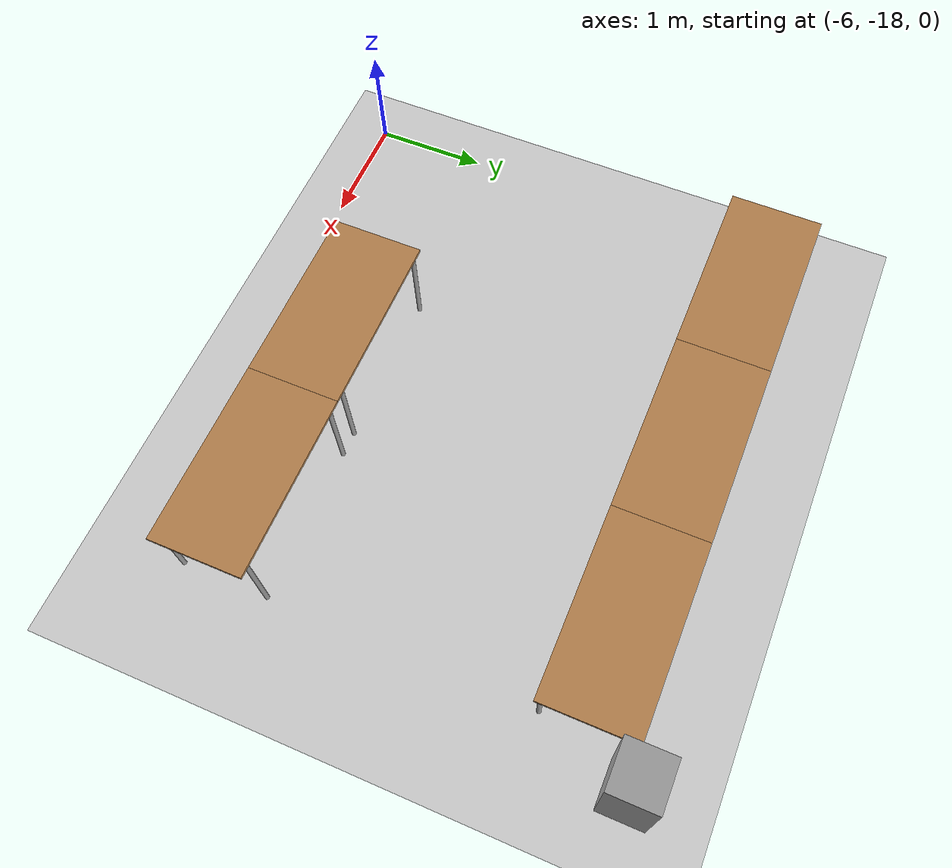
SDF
<sdf version="1.6">
 <world name="default">
  <model name="ground_plane">
   <static>1</static>
   <link name="link">
    <collision name="collision">
     <geometry><plane><normal>0 0 1</normal><size>100 100</size></plane></geometry>
     <surface><friction><ode><mu>100</mu><mu2>50</mu2></ode></friction></surface>
    </collision>
    <visual name="visual">
     <cast_shadows>0</cast_shadows>
     <geometry><plane><normal>0 0 1</normal><size>100 100</size></plane></geometry>
     <material>
      <script><uri>file://media/materials/scripts/gazebo.material</uri><name>Gazebo/Grey</name></script>
     </material>
    </visual>
   </link>
  </model>
  <model name="tablealt_0_clone_39">
   <link name="link">
    <inertial>
     <mass>1</mass>
     <inertia><ixx>1</ixx><ixy>0</ixy><ixz>0</ixz><iyy>1</iyy><iyz>0</iyz><izz>1</izz></inertia>
    </inertial>
    <visual name="back_right_leg">
     <pose>-0.68 -0.38 0.4 0 -0 0</pose>
     <geometry><cylinder><radius>0.02</radius><length>0.8</length></cylinder></geometry>
     <material>
      <script><uri>file://media/materials/scripts/gazebo.material</uri><name>Gazebo/Grey</name></script>
      <shader type="pixel"><normal_map>__default__</normal_map></shader>
      <ambient>0.3 0.3 0.3 1</ambient>
      <diffuse>0.7 0.7 0.7 1</diffuse>
      <specular>0.01 0.01 0.01 1</specular>
      <emissive>0 0 0 1</emissive>
     </material>
    </visual>
    <visual name="back_left_leg">
     <pose>-0.68 0.38 0.4 0 -0 0</pose>
     <geometry><cylinder><radius>0.02</radius><length>0.8</length></cylinder></geometry>
     <material>
      <script><uri>file://media/materials/scripts/gazebo.material</uri><name>Gazebo/Grey</name></script>
      <shader type="pixel"><normal_map>__default__</normal_map></shader>
      <ambient>0.3 0.3 0.3 1</ambient>
      <diffuse>0.7 0.7 0.7 1</diffuse>
      <specular>0.01 0.01 0.01 1</specular>
      <emissive>0 0 0 1</emissive>
     </material>
    </visual>
    <visual name="visual1">
     <pose>0 0 0.8 0 -0 0</pose>
     <geometry><box><size>1.57 0.8 0.03</size></box></geometry>
     <material>
      <script><uri>file://media/materials/scripts/gazebo.material</uri><name>Gazebo/Wood</name></script>
      <shader type="pixel"><normal_map>__default__</normal_map></shader>
      <ambient>0.92 0.92 0.68 1</ambient>
      <diffuse>1 1 1 1</diffuse>
      <specular>0.2 0.2 0.2 1</specular>
      <emissive>0 0 0 1</emissive>
     </material>
    </visual>
    <visual name="front_left_leg">
     <pose>0.68 0.38 0.4 0 -0 0</pose>
     <geometry><cylinder><radius>0.02</radius><length>0.8</length></cylinder></geometry>
     <material>
      <script><uri>file://media/materials/scripts/gazebo.material</uri><name>Gazebo/Grey</name></script>
      <shader type="pixel"><normal_map>__default__</normal_map></shader>
      <ambient>0.3 0.3 0.3 1</ambient>
      <diffuse>0.7 0.7 0.7 1</diffuse>
      <specular>0.01 0.01 0.01 1</specular>
      <emissive>0 0 0 1</emissive>
     </material>
    </visual>
    <visual name="front_right_leg">
     <pose>0.68 -0.38 0.4 0 -0 0</pose>
     <geometry><cylinder><radius>0.02</radius><length>0.8</length></cylinder></geometry>
     <material>
      <script><uri>file://media/materials/scripts/gazebo.material</uri><name>Gazebo/Grey</name></script>
      <shader type="pixel"><normal_map>__default__</normal_map></shader>
      <ambient>0.3 0.3 0.3 1</ambient>
      <diffuse>0.7 0.7 0.7 1</diffuse>
      <specular>0.01 0.01 0.01 1</specular>
      <emissive>0 0 0 1</emissive>
     </material>
    </visual>
    <collision name="front_right_leg">
     <pose>0.68 -0.38 0.4 0 -0 0</pose>
     <geometry><cylinder><radius>0.02</radius><length>0.8</length></cylinder></geometry>
     <surface>
      <friction>
       <ode><mu>1</mu><mu2>1</mu2><fdir1>0 0 0</fdir1><slip1>0</slip1><slip2>0</slip2></ode>
       <torsional>
        <coefficient>1</coefficient>
        <patch_radius>0</patch_radius>
        <surface_radius>0</surface_radius>
        <use_patch_radius>1</use_patch_radius>
        <ode><slip>0</slip></ode>
       </torsional>
      </friction>
      <bounce><restitution_coefficient>0</restitution_coefficient><threshold>1e+06</threshold></bounce>
      <contact>
       <collide_without_contact>0</collide_without_contact>
       <collide_without_contact_bitmask>1</collide_without_contact_bitmask>
       <collide_bitmask>1</collide_bitmask>
       <ode>
        <soft_cfm>0</soft_cfm>
        <soft_erp>0.2</soft_erp>
        <kp>1e+13</kp>
        <kd>1</kd>
        <max_vel>0.01</max_vel>
        <min_depth>0</min_depth>
       </ode>
       <bullet>
        <split_impulse>1</split_impulse>
        <split_impulse_penetration_threshold>-0.01</split_impulse_penetration_threshold>
        <soft_cfm>0</soft_cfm>
        <soft_erp>0.2</soft_erp>
        <kp>1e+13</kp>
        <kd>1</kd>
       </bullet>
      </contact>
     </surface>
    </collision>
    <collision name="surface">
     <pose>0 0 0.8 0 -0 0</pose>
     <geometry><box><size>1.5 0.8 0.03</size></box></geometry>
     <surface>
      <friction>
       <ode><mu>0.6</mu><mu2>0.6</mu2><fdir1>0 0 0</fdir1><slip1>0</slip1><slip2>0</slip2></ode>
       <torsional>
        <coefficient>1</coefficient>
        <patch_radius>0</patch_radius>
        <surface_radius>0</surface_radius>
        <use_patch_radius>1</use_patch_radius>
        <ode><slip>0</slip></ode>
       </torsional>
      </friction>
      <bounce><restitution_coefficient>0</restitution_coefficient><threshold>1e+06</threshold></bounce>
      <contact>
       <collide_without_contact>0</collide_without_contact>
       <collide_without_contact_bitmask>1</collide_without_contact_bitmask>
       <collide_bitmask>1</collide_bitmask>
       <ode>
        <soft_cfm>0</soft_cfm>
        <soft_erp>0.2</soft_erp>
        <kp>1e+13</kp>
        <kd>1</kd>
        <max_vel>0.01</max_vel>
        <min_depth>0</min_depth>
       </ode>
       <bullet>
        <split_impulse>1</split_impulse>
        <split_impulse_penetration_threshold>-0.01</split_impulse_penetration_threshold>
        <soft_cfm>0</soft_cfm>
        <soft_erp>0.2</soft_erp>
        <kp>1e+13</kp>
        <kd>1</kd>
       </bullet>
      </contact>
     </surface>
    </collision>
    <collision name="front_left_leg">
     <pose>0.68 0.38 0.4 0 -0 0</pose>
     <geometry><cylinder><radius>0.02</radius><length>0.8</length></cylinder></geometry>
     <surface>
      <friction>
       <ode><mu>1</mu><mu2>1</mu2><fdir1>0 0 0</fdir1><slip1>0</slip1><slip2>0</slip2></ode>
       <torsional>
        <coefficient>1</coefficient>
        <patch_radius>0</patch_radius>
        <surface_radius>0</surface_radius>
        <use_patch_radius>1</use_patch_radius>
        <ode><slip>0</slip></ode>
       </torsional>
      </friction>
      <bounce><restitution_coefficient>0</restitution_coefficient><threshold>1e+06</threshold></bounce>
      <contact>
       <collide_without_contact>0</collide_without_contact>
       <collide_without_contact_bitmask>1</collide_without_contact_bitmask>
       <collide_bitmask>1</collide_bitmask>
       <ode>
        <soft_cfm>0</soft_cfm>
        <soft_erp>0.2</soft_erp>
        <kp>1e+13</kp>
        <kd>1</kd>
        <max_vel>0.01</max_vel>
        <min_depth>0</min_depth>
       </ode>
       <bullet>
        <split_impulse>1</split_impulse>
        <split_impulse_penetration_threshold>-0.01</split_impulse_penetration_threshold>
        <soft_cfm>0</soft_cfm>
        <soft_erp>0.2</soft_erp>
        <kp>1e+13</kp>
        <kd>1</kd>
       </bullet>
      </contact>
     </surface>
    </collision>
    <collision name="back_left_leg">
     <pose>-0.68 0.38 0.4 0 -0 0</pose>
     <geometry><cylinder><radius>0.02</radius><length>0.8</length></cylinder></geometry>
     <surface>
      <friction>
       <ode><mu>1</mu><mu2>1</mu2><fdir1>0 0 0</fdir1><slip1>0</slip1><slip2>0</slip2></ode>
       <torsional>
        <coefficient>1</coefficient>
        <patch_radius>0</patch_radius>
        <surface_radius>0</surface_radius>
        <use_patch_radius>1</use_patch_radius>
        <ode><slip>0</slip></ode>
       </torsional>
      </friction>
      <bounce><restitution_coefficient>0</restitution_coefficient><threshold>1e+06</threshold></bounce>
      <contact>
       <collide_without_contact>0</collide_without_contact>
       <collide_without_contact_bitmask>1</collide_without_contact_bitmask>
       <collide_bitmask>1</collide_bitmask>
       <ode>
        <soft_cfm>0</soft_cfm>
        <soft_erp>0.2</soft_erp>
        <kp>1e+13</kp>
        <kd>1</kd>
        <max_vel>0.01</max_vel>
        <min_depth>0</min_depth>
       </ode>
       <bullet>
        <split_impulse>1</split_impulse>
        <split_impulse_penetration_threshold>-0.01</split_impulse_penetration_threshold>
        <soft_cfm>0</soft_cfm>
        <soft_erp>0.2</soft_erp>
        <kp>1e+13</kp>
        <kd>1</kd>
       </bullet>
      </contact>
     </surface>
    </collision>
    <collision name="back_right_leg">
     <pose>-0.68 -0.38 0.4 0 -0 0</pose>
     <geometry><cylinder><radius>0.02</radius><length>0.8</length></cylinder></geometry>
     <surface>
      <friction>
       <ode><mu>1</mu><mu2>1</mu2><fdir1>0 0 0</fdir1><slip1>0</slip1><slip2>0</slip2></ode>
       <torsional>
        <coefficient>1</coefficient>
        <patch_radius>0</patch_radius>
        <surface_radius>0</surface_radius>
        <use_patch_radius>1</use_patch_radius>
        <ode><slip>0</slip></ode>
       </torsional>
      </friction>
      <bounce><restitution_coefficient>0</restitution_coefficient><threshold>1e+06</threshold></bounce>
      <contact>
       <collide_without_contact>0</collide_without_contact>
       <collide_without_contact_bitmask>1</collide_without_contact_bitmask>
       <collide_bitmask>1</collide_bitmask>
       <ode>
        <soft_cfm>0</soft_cfm>
        <soft_erp>0.2</soft_erp>
        <kp>1e+13</kp>
        <kd>1</kd>
        <max_vel>0.01</max_vel>
        <min_depth>0</min_depth>
       </ode>
       <bullet>
        <split_impulse>1</split_impulse>
        <split_impulse_penetration_threshold>-0.01</split_impulse_penetration_threshold>
        <soft_cfm>0</soft_cfm>
        <soft_erp>0.2</soft_erp>
        <kp>1e+13</kp>
        <kd>1</kd>
       </bullet>
      </contact>
     </surface>
    </collision>
   </link>
   <static>1</static>
   <pose>-5.13 -14.1 0 0 -0 0</pose>
  </model>
  <model name="tablealt_0_clone_40">
   <link name="link">
    <inertial>
     <mass>1</mass>
     <inertia><ixx>1</ixx><ixy>0</ixy><ixz>0</ixz><iyy>1</iyy><iyz>0</iyz><izz>1</izz></inertia>
    </inertial>
    <visual name="back_right_leg">
     <pose>-0.68 -0.38 0.4 0 -0 0</pose>
     <geometry><cylinder><radius>0.02</radius><length>0.8</length></cylinder></geometry>
     <material>
      <script><uri>file://media/materials/scripts/gazebo.material</uri><name>Gazebo/Grey</name></script>
      <shader type="pixel"><normal_map>__default__</normal_map></shader>
      <ambient>0.3 0.3 0.3 1</ambient>
      <diffuse>0.7 0.7 0.7 1</diffuse>
      <specular>0.01 0.01 0.01 1</specular>
      <emissive>0 0 0 1</emissive>
     </material>
    </visual>
    <visual name="back_left_leg">
     <pose>-0.68 0.38 0.4 0 -0 0</pose>
     <geometry><cylinder><radius>0.02</radius><length>0.8</length></cylinder></geometry>
     <material>
      <script><uri>file://media/materials/scripts/gazebo.material</uri><name>Gazebo/Grey</name></script>
      <shader type="pixel"><normal_map>__default__</normal_map></shader>
      <ambient>0.3 0.3 0.3 1</ambient>
      <diffuse>0.7 0.7 0.7 1</diffuse>
      <specular>0.01 0.01 0.01 1</specular>
      <emissive>0 0 0 1</emissive>
     </material>
    </visual>
    <visual name="visual1">
     <pose>0 0 0.8 0 -0 0</pose>
     <geometry><box><size>1.57 0.8 0.03</size></box></geometry>
     <material>
      <script><uri>file://media/materials/scripts/gazebo.material</uri><name>Gazebo/Wood</name></script>
      <shader type="pixel"><normal_map>__default__</normal_map></shader>
      <ambient>0.92 0.92 0.68 1</ambient>
      <diffuse>1 1 1 1</diffuse>
      <specular>0.2 0.2 0.2 1</specular>
      <emissive>0 0 0 1</emissive>
     </material>
    </visual>
    <visual name="front_left_leg">
     <pose>0.68 0.38 0.4 0 -0 0</pose>
     <geometry><cylinder><radius>0.02</radius><length>0.8</length></cylinder></geometry>
     <material>
      <script><uri>file://media/materials/scripts/gazebo.material</uri><name>Gazebo/Grey</name></script>
      <shader type="pixel"><normal_map>__default__</normal_map></shader>
      <ambient>0.3 0.3 0.3 1</ambient>
      <diffuse>0.7 0.7 0.7 1</diffuse>
      <specular>0.01 0.01 0.01 1</specular>
      <emissive>0 0 0 1</emissive>
     </material>
    </visual>
    <visual name="front_right_leg">
     <pose>0.68 -0.38 0.4 0 -0 0</pose>
     <geometry><cylinder><radius>0.02</radius><length>0.8</length></cylinder></geometry>
     <material>
      <script><uri>file://media/materials/scripts/gazebo.material</uri><name>Gazebo/Grey</name></script>
      <shader type="pixel"><normal_map>__default__</normal_map></shader>
      <ambient>0.3 0.3 0.3 1</ambient>
      <diffuse>0.7 0.7 0.7 1</diffuse>
      <specular>0.01 0.01 0.01 1</specular>
      <emissive>0 0 0 1</emissive>
     </material>
    </visual>
    <collision name="front_right_leg">
     <pose>0.68 -0.38 0.4 0 -0 0</pose>
     <geometry><cylinder><radius>0.02</radius><length>0.8</length></cylinder></geometry>
     <surface>
      <friction>
       <ode><mu>1</mu><mu2>1</mu2><fdir1>0 0 0</fdir1><slip1>0</slip1><slip2>0</slip2></ode>
       <torsional>
        <coefficient>1</coefficient>
        <patch_radius>0</patch_radius>
        <surface_radius>0</surface_radius>
        <use_patch_radius>1</use_patch_radius>
        <ode><slip>0</slip></ode>
       </torsional>
      </friction>
      <bounce><restitution_coefficient>0</restitution_coefficient><threshold>1e+06</threshold></bounce>
      <contact>
       <collide_without_contact>0</collide_without_contact>
       <collide_without_contact_bitmask>1</collide_without_contact_bitmask>
       <collide_bitmask>1</collide_bitmask>
       <ode>
        <soft_cfm>0</soft_cfm>
        <soft_erp>0.2</soft_erp>
        <kp>1e+13</kp>
        <kd>1</kd>
        <max_vel>0.01</max_vel>
        <min_depth>0</min_depth>
       </ode>
       <bullet>
        <split_impulse>1</split_impulse>
        <split_impulse_penetration_threshold>-0.01</split_impulse_penetration_threshold>
        <soft_cfm>0</soft_cfm>
        <soft_erp>0.2</soft_erp>
        <kp>1e+13</kp>
        <kd>1</kd>
       </bullet>
      </contact>
     </surface>
    </collision>
    <collision name="surface">
     <pose>0 0 0.8 0 -0 0</pose>
     <geometry><box><size>1.5 0.8 0.03</size></box></geometry>
     <surface>
      <friction>
       <ode><mu>0.6</mu><mu2>0.6</mu2><fdir1>0 0 0</fdir1><slip1>0</slip1><slip2>0</slip2></ode>
       <torsional>
        <coefficient>1</coefficient>
        <patch_radius>0</patch_radius>
        <surface_radius>0</surface_radius>
        <use_patch_radius>1</use_patch_radius>
        <ode><slip>0</slip></ode>
       </torsional>
      </friction>
      <bounce><restitution_coefficient>0</restitution_coefficient><threshold>1e+06</threshold></bounce>
      <contact>
       <collide_without_contact>0</collide_without_contact>
       <collide_without_contact_bitmask>1</collide_without_contact_bitmask>
       <collide_bitmask>1</collide_bitmask>
       <ode>
        <soft_cfm>0</soft_cfm>
        <soft_erp>0.2</soft_erp>
        <kp>1e+13</kp>
        <kd>1</kd>
        <max_vel>0.01</max_vel>
        <min_depth>0</min_depth>
       </ode>
       <bullet>
        <split_impulse>1</split_impulse>
        <split_impulse_penetration_threshold>-0.01</split_impulse_penetration_threshold>
        <soft_cfm>0</soft_cfm>
        <soft_erp>0.2</soft_erp>
        <kp>1e+13</kp>
        <kd>1</kd>
       </bullet>
      </contact>
     </surface>
    </collision>
    <collision name="front_left_leg">
     <pose>0.68 0.38 0.4 0 -0 0</pose>
     <geometry><cylinder><radius>0.02</radius><length>0.8</length></cylinder></geometry>
     <surface>
      <friction>
       <ode><mu>1</mu><mu2>1</mu2><fdir1>0 0 0</fdir1><slip1>0</slip1><slip2>0</slip2></ode>
       <torsional>
        <coefficient>1</coefficient>
        <patch_radius>0</patch_radius>
        <surface_radius>0</surface_radius>
        <use_patch_radius>1</use_patch_radius>
        <ode><slip>0</slip></ode>
       </torsional>
      </friction>
      <bounce><restitution_coefficient>0</restitution_coefficient><threshold>1e+06</threshold></bounce>
      <contact>
       <collide_without_contact>0</collide_without_contact>
       <collide_without_contact_bitmask>1</collide_without_contact_bitmask>
       <collide_bitmask>1</collide_bitmask>
       <ode>
        <soft_cfm>0</soft_cfm>
        <soft_erp>0.2</soft_erp>
        <kp>1e+13</kp>
        <kd>1</kd>
        <max_vel>0.01</max_vel>
        <min_depth>0</min_depth>
       </ode>
       <bullet>
        <split_impulse>1</split_impulse>
        <split_impulse_penetration_threshold>-0.01</split_impulse_penetration_threshold>
        <soft_cfm>0</soft_cfm>
        <soft_erp>0.2</soft_erp>
        <kp>1e+13</kp>
        <kd>1</kd>
       </bullet>
      </contact>
     </surface>
    </collision>
    <collision name="back_left_leg">
     <pose>-0.68 0.38 0.4 0 -0 0</pose>
     <geometry><cylinder><radius>0.02</radius><length>0.8</length></cylinder></geometry>
     <surface>
      <friction>
       <ode><mu>1</mu><mu2>1</mu2><fdir1>0 0 0</fdir1><slip1>0</slip1><slip2>0</slip2></ode>
       <torsional>
        <coefficient>1</coefficient>
        <patch_radius>0</patch_radius>
        <surface_radius>0</surface_radius>
        <use_patch_radius>1</use_patch_radius>
        <ode><slip>0</slip></ode>
       </torsional>
      </friction>
      <bounce><restitution_coefficient>0</restitution_coefficient><threshold>1e+06</threshold></bounce>
      <contact>
       <collide_without_contact>0</collide_without_contact>
       <collide_without_contact_bitmask>1</collide_without_contact_bitmask>
       <collide_bitmask>1</collide_bitmask>
       <ode>
        <soft_cfm>0</soft_cfm>
        <soft_erp>0.2</soft_erp>
        <kp>1e+13</kp>
        <kd>1</kd>
        <max_vel>0.01</max_vel>
        <min_depth>0</min_depth>
       </ode>
       <bullet>
        <split_impulse>1</split_impulse>
        <split_impulse_penetration_threshold>-0.01</split_impulse_penetration_threshold>
        <soft_cfm>0</soft_cfm>
        <soft_erp>0.2</soft_erp>
        <kp>1e+13</kp>
        <kd>1</kd>
       </bullet>
      </contact>
     </surface>
    </collision>
    <collision name="back_right_leg">
     <pose>-0.68 -0.38 0.4 0 -0 0</pose>
     <geometry><cylinder><radius>0.02</radius><length>0.8</length></cylinder></geometry>
     <surface>
      <friction>
       <ode><mu>1</mu><mu2>1</mu2><fdir1>0 0 0</fdir1><slip1>0</slip1><slip2>0</slip2></ode>
       <torsional>
        <coefficient>1</coefficient>
        <patch_radius>0</patch_radius>
        <surface_radius>0</surface_radius>
        <use_patch_radius>1</use_patch_radius>
        <ode><slip>0</slip></ode>
       </torsional>
      </friction>
      <bounce><restitution_coefficient>0</restitution_coefficient><threshold>1e+06</threshold></bounce>
      <contact>
       <collide_without_contact>0</collide_without_contact>
       <collide_without_contact_bitmask>1</collide_without_contact_bitmask>
       <collide_bitmask>1</collide_bitmask>
       <ode>
        <soft_cfm>0</soft_cfm>
        <soft_erp>0.2</soft_erp>
        <kp>1e+13</kp>
        <kd>1</kd>
        <max_vel>0.01</max_vel>
        <min_depth>0</min_depth>
       </ode>
       <bullet>
        <split_impulse>1</split_impulse>
        <split_impulse_penetration_threshold>-0.01</split_impulse_penetration_threshold>
        <soft_cfm>0</soft_cfm>
        <soft_erp>0.2</soft_erp>
        <kp>1e+13</kp>
        <kd>1</kd>
       </bullet>
      </contact>
     </surface>
    </collision>
   </link>
   <static>1</static>
   <pose>-3.56 -14.1 0 0 -0 0</pose>
  </model>
  <model name="tablealt_0_clone_41">
   <link name="link">
    <inertial>
     <mass>1</mass>
     <inertia><ixx>1</ixx><ixy>0</ixy><ixz>0</ixz><iyy>1</iyy><iyz>0</iyz><izz>1</izz></inertia>
    </inertial>
    <visual name="back_right_leg">
     <pose>-0.68 -0.38 0.4 0 -0 0</pose>
     <geometry><cylinder><radius>0.02</radius><length>0.8</length></cylinder></geometry>
     <material>
      <script><uri>file://media/materials/scripts/gazebo.material</uri><name>Gazebo/Grey</name></script>
      <shader type="pixel"><normal_map>__default__</normal_map></shader>
      <ambient>0.3 0.3 0.3 1</ambient>
      <diffuse>0.7 0.7 0.7 1</diffuse>
      <specular>0.01 0.01 0.01 1</specular>
      <emissive>0 0 0 1</emissive>
     </material>
    </visual>
    <visual name="back_left_leg">
     <pose>-0.68 0.38 0.4 0 -0 0</pose>
     <geometry><cylinder><radius>0.02</radius><length>0.8</length></cylinder></geometry>
     <material>
      <script><uri>file://media/materials/scripts/gazebo.material</uri><name>Gazebo/Grey</name></script>
      <shader type="pixel"><normal_map>__default__</normal_map></shader>
      <ambient>0.3 0.3 0.3 1</ambient>
      <diffuse>0.7 0.7 0.7 1</diffuse>
      <specular>0.01 0.01 0.01 1</specular>
      <emissive>0 0 0 1</emissive>
     </material>
    </visual>
    <visual name="visual1">
     <pose>0 0 0.8 0 -0 0</pose>
     <geometry><box><size>1.57 0.8 0.03</size></box></geometry>
     <material>
      <script><uri>file://media/materials/scripts/gazebo.material</uri><name>Gazebo/Wood</name></script>
      <shader type="pixel"><normal_map>__default__</normal_map></shader>
      <ambient>0.92 0.92 0.68 1</ambient>
      <diffuse>1 1 1 1</diffuse>
      <specular>0.2 0.2 0.2 1</specular>
      <emissive>0 0 0 1</emissive>
     </material>
    </visual>
    <visual name="front_left_leg">
     <pose>0.68 0.38 0.4 0 -0 0</pose>
     <geometry><cylinder><radius>0.02</radius><length>0.8</length></cylinder></geometry>
     <material>
      <script><uri>file://media/materials/scripts/gazebo.material</uri><name>Gazebo/Grey</name></script>
      <shader type="pixel"><normal_map>__default__</normal_map></shader>
      <ambient>0.3 0.3 0.3 1</ambient>
      <diffuse>0.7 0.7 0.7 1</diffuse>
      <specular>0.01 0.01 0.01 1</specular>
      <emissive>0 0 0 1</emissive>
     </material>
    </visual>
    <visual name="front_right_leg">
     <pose>0.68 -0.38 0.4 0 -0 0</pose>
     <geometry><cylinder><radius>0.02</radius><length>0.8</length></cylinder></geometry>
     <material>
      <script><uri>file://media/materials/scripts/gazebo.material</uri><name>Gazebo/Grey</name></script>
      <shader type="pixel"><normal_map>__default__</normal_map></shader>
      <ambient>0.3 0.3 0.3 1</ambient>
      <diffuse>0.7 0.7 0.7 1</diffuse>
      <specular>0.01 0.01 0.01 1</specular>
      <emissive>0 0 0 1</emissive>
     </material>
    </visual>
    <collision name="front_right_leg">
     <pose>0.68 -0.38 0.4 0 -0 0</pose>
     <geometry><cylinder><radius>0.02</radius><length>0.8</length></cylinder></geometry>
     <surface>
      <friction>
       <ode><mu>1</mu><mu2>1</mu2><fdir1>0 0 0</fdir1><slip1>0</slip1><slip2>0</slip2></ode>
       <torsional>
        <coefficient>1</coefficient>
        <patch_radius>0</patch_radius>
        <surface_radius>0</surface_radius>
        <use_patch_radius>1</use_patch_radius>
        <ode><slip>0</slip></ode>
       </torsional>
      </friction>
      <bounce><restitution_coefficient>0</restitution_coefficient><threshold>1e+06</threshold></bounce>
      <contact>
       <collide_without_contact>0</collide_without_contact>
       <collide_without_contact_bitmask>1</collide_without_contact_bitmask>
       <collide_bitmask>1</collide_bitmask>
       <ode>
        <soft_cfm>0</soft_cfm>
        <soft_erp>0.2</soft_erp>
        <kp>1e+13</kp>
        <kd>1</kd>
        <max_vel>0.01</max_vel>
        <min_depth>0</min_depth>
       </ode>
       <bullet>
        <split_impulse>1</split_impulse>
        <split_impulse_penetration_threshold>-0.01</split_impulse_penetration_threshold>
        <soft_cfm>0</soft_cfm>
        <soft_erp>0.2</soft_erp>
        <kp>1e+13</kp>
        <kd>1</kd>
       </bullet>
      </contact>
     </surface>
    </collision>
    <collision name="surface">
     <pose>0 0 0.8 0 -0 0</pose>
     <geometry><box><size>1.5 0.8 0.03</size></box></geometry>
     <surface>
      <friction>
       <ode><mu>0.6</mu><mu2>0.6</mu2><fdir1>0 0 0</fdir1><slip1>0</slip1><slip2>0</slip2></ode>
       <torsional>
        <coefficient>1</coefficient>
        <patch_radius>0</patch_radius>
        <surface_radius>0</surface_radius>
        <use_patch_radius>1</use_patch_radius>
        <ode><slip>0</slip></ode>
       </torsional>
      </friction>
      <bounce><restitution_coefficient>0</restitution_coefficient><threshold>1e+06</threshold></bounce>
      <contact>
       <collide_without_contact>0</collide_without_contact>
       <collide_without_contact_bitmask>1</collide_without_contact_bitmask>
       <collide_bitmask>1</collide_bitmask>
       <ode>
        <soft_cfm>0</soft_cfm>
        <soft_erp>0.2</soft_erp>
        <kp>1e+13</kp>
        <kd>1</kd>
        <max_vel>0.01</max_vel>
        <min_depth>0</min_depth>
       </ode>
       <bullet>
        <split_impulse>1</split_impulse>
        <split_impulse_penetration_threshold>-0.01</split_impulse_penetration_threshold>
        <soft_cfm>0</soft_cfm>
        <soft_erp>0.2</soft_erp>
        <kp>1e+13</kp>
        <kd>1</kd>
       </bullet>
      </contact>
     </surface>
    </collision>
    <collision name="front_left_leg">
     <pose>0.68 0.38 0.4 0 -0 0</pose>
     <geometry><cylinder><radius>0.02</radius><length>0.8</length></cylinder></geometry>
     <surface>
      <friction>
       <ode><mu>1</mu><mu2>1</mu2><fdir1>0 0 0</fdir1><slip1>0</slip1><slip2>0</slip2></ode>
       <torsional>
        <coefficient>1</coefficient>
        <patch_radius>0</patch_radius>
        <surface_radius>0</surface_radius>
        <use_patch_radius>1</use_patch_radius>
        <ode><slip>0</slip></ode>
       </torsional>
      </friction>
      <bounce><restitution_coefficient>0</restitution_coefficient><threshold>1e+06</threshold></bounce>
      <contact>
       <collide_without_contact>0</collide_without_contact>
       <collide_without_contact_bitmask>1</collide_without_contact_bitmask>
       <collide_bitmask>1</collide_bitmask>
       <ode>
        <soft_cfm>0</soft_cfm>
        <soft_erp>0.2</soft_erp>
        <kp>1e+13</kp>
        <kd>1</kd>
        <max_vel>0.01</max_vel>
        <min_depth>0</min_depth>
       </ode>
       <bullet>
        <split_impulse>1</split_impulse>
        <split_impulse_penetration_threshold>-0.01</split_impulse_penetration_threshold>
        <soft_cfm>0</soft_cfm>
        <soft_erp>0.2</soft_erp>
        <kp>1e+13</kp>
        <kd>1</kd>
       </bullet>
      </contact>
     </surface>
    </collision>
    <collision name="back_left_leg">
     <pose>-0.68 0.38 0.4 0 -0 0</pose>
     <geometry><cylinder><radius>0.02</radius><length>0.8</length></cylinder></geometry>
     <surface>
      <friction>
       <ode><mu>1</mu><mu2>1</mu2><fdir1>0 0 0</fdir1><slip1>0</slip1><slip2>0</slip2></ode>
       <torsional>
        <coefficient>1</coefficient>
        <patch_radius>0</patch_radius>
        <surface_radius>0</surface_radius>
        <use_patch_radius>1</use_patch_radius>
        <ode><slip>0</slip></ode>
       </torsional>
      </friction>
      <bounce><restitution_coefficient>0</restitution_coefficient><threshold>1e+06</threshold></bounce>
      <contact>
       <collide_without_contact>0</collide_without_contact>
       <collide_without_contact_bitmask>1</collide_without_contact_bitmask>
       <collide_bitmask>1</collide_bitmask>
       <ode>
        <soft_cfm>0</soft_cfm>
        <soft_erp>0.2</soft_erp>
        <kp>1e+13</kp>
        <kd>1</kd>
        <max_vel>0.01</max_vel>
        <min_depth>0</min_depth>
       </ode>
       <bullet>
        <split_impulse>1</split_impulse>
        <split_impulse_penetration_threshold>-0.01</split_impulse_penetration_threshold>
        <soft_cfm>0</soft_cfm>
        <soft_erp>0.2</soft_erp>
        <kp>1e+13</kp>
        <kd>1</kd>
       </bullet>
      </contact>
     </surface>
    </collision>
    <collision name="back_right_leg">
     <pose>-0.68 -0.38 0.4 0 -0 0</pose>
     <geometry><cylinder><radius>0.02</radius><length>0.8</length></cylinder></geometry>
     <surface>
      <friction>
       <ode><mu>1</mu><mu2>1</mu2><fdir1>0 0 0</fdir1><slip1>0</slip1><slip2>0</slip2></ode>
       <torsional>
        <coefficient>1</coefficient>
        <patch_radius>0</patch_radius>
        <surface_radius>0</surface_radius>
        <use_patch_radius>1</use_patch_radius>
        <ode><slip>0</slip></ode>
       </torsional>
      </friction>
      <bounce><restitution_coefficient>0</restitution_coefficient><threshold>1e+06</threshold></bounce>
      <contact>
       <collide_without_contact>0</collide_without_contact>
       <collide_without_contact_bitmask>1</collide_without_contact_bitmask>
       <collide_bitmask>1</collide_bitmask>
       <ode>
        <soft_cfm>0</soft_cfm>
        <soft_erp>0.2</soft_erp>
        <kp>1e+13</kp>
        <kd>1</kd>
        <max_vel>0.01</max_vel>
        <min_depth>0</min_depth>
       </ode>
       <bullet>
        <split_impulse>1</split_impulse>
        <split_impulse_penetration_threshold>-0.01</split_impulse_penetration_threshold>
        <soft_cfm>0</soft_cfm>
        <soft_erp>0.2</soft_erp>
        <kp>1e+13</kp>
        <kd>1</kd>
       </bullet>
      </contact>
     </surface>
    </collision>
   </link>
   <static>1</static>
   <pose>-1.99 -14.1 0 0 -0 0</pose>
  </model>
  <model name="tablealt_0_clone_61">
   <link name="link">
    <inertial>
     <mass>1</mass>
     <inertia><ixx>1</ixx><ixy>0</ixy><ixz>0</ixz><iyy>1</iyy><iyz>0</iyz><izz>1</izz></inertia>
    </inertial>
    <visual name="back_right_leg">
     <pose>-0.68 -0.38 0.4 0 -0 0</pose>
     <geometry><cylinder><radius>0.02</radius><length>0.8</length></cylinder></geometry>
     <material>
      <script><uri>file://media/materials/scripts/gazebo.material</uri><name>Gazebo/Grey</name></script>
      <shader type="pixel"><normal_map>__default__</normal_map></shader>
      <ambient>0.3 0.3 0.3 1</ambient>
      <diffuse>0.7 0.7 0.7 1</diffuse>
      <specular>0.01 0.01 0.01 1</specular>
      <emissive>0 0 0 1</emissive>
     </material>
    </visual>
    <visual name="back_left_leg">
     <pose>-0.68 0.38 0.4 0 -0 0</pose>
     <geometry><cylinder><radius>0.02</radius><length>0.8</length></cylinder></geometry>
     <material>
      <script><uri>file://media/materials/scripts/gazebo.material</uri><name>Gazebo/Grey</name></script>
      <shader type="pixel"><normal_map>__default__</normal_map></shader>
      <ambient>0.3 0.3 0.3 1</ambient>
      <diffuse>0.7 0.7 0.7 1</diffuse>
      <specular>0.01 0.01 0.01 1</specular>
      <emissive>0 0 0 1</emissive>
     </material>
    </visual>
    <visual name="visual1">
     <pose>0 0 0.8 0 -0 0</pose>
     <geometry><box><size>1.57 0.8 0.03</size></box></geometry>
     <material>
      <script><uri>file://media/materials/scripts/gazebo.material</uri><name>Gazebo/Wood</name></script>
      <shader type="pixel"><normal_map>__default__</normal_map></shader>
      <ambient>0.92 0.92 0.68 1</ambient>
      <diffuse>1 1 1 1</diffuse>
      <specular>0.2 0.2 0.2 1</specular>
      <emissive>0 0 0 1</emissive>
     </material>
    </visual>
    <visual name="front_left_leg">
     <pose>0.68 0.38 0.4 0 -0 0</pose>
     <geometry><cylinder><radius>0.02</radius><length>0.8</length></cylinder></geometry>
     <material>
      <script><uri>file://media/materials/scripts/gazebo.material</uri><name>Gazebo/Grey</name></script>
      <shader type="pixel"><normal_map>__default__</normal_map></shader>
      <ambient>0.3 0.3 0.3 1</ambient>
      <diffuse>0.7 0.7 0.7 1</diffuse>
      <specular>0.01 0.01 0.01 1</specular>
      <emissive>0 0 0 1</emissive>
     </material>
    </visual>
    <visual name="front_right_leg">
     <pose>0.68 -0.38 0.4 0 -0 0</pose>
     <geometry><cylinder><radius>0.02</radius><length>0.8</length></cylinder></geometry>
     <material>
      <script><uri>file://media/materials/scripts/gazebo.material</uri><name>Gazebo/Grey</name></script>
      <shader type="pixel"><normal_map>__default__</normal_map></shader>
      <ambient>0.3 0.3 0.3 1</ambient>
      <diffuse>0.7 0.7 0.7 1</diffuse>
      <specular>0.01 0.01 0.01 1</specular>
      <emissive>0 0 0 1</emissive>
     </material>
    </visual>
    <collision name="front_right_leg">
     <pose>0.68 -0.38 0.4 0 -0 0</pose>
     <geometry><cylinder><radius>0.02</radius><length>0.8</length></cylinder></geometry>
     <surface>
      <friction>
       <ode><mu>1</mu><mu2>1</mu2><fdir1>0 0 0</fdir1><slip1>0</slip1><slip2>0</slip2></ode>
       <torsional>
        <coefficient>1</coefficient>
        <patch_radius>0</patch_radius>
        <surface_radius>0</surface_radius>
        <use_patch_radius>1</use_patch_radius>
        <ode><slip>0</slip></ode>
       </torsional>
      </friction>
      <bounce><restitution_coefficient>0</restitution_coefficient><threshold>1e+06</threshold></bounce>
      <contact>
       <collide_without_contact>0</collide_without_contact>
       <collide_without_contact_bitmask>1</collide_without_contact_bitmask>
       <collide_bitmask>1</collide_bitmask>
       <ode>
        <soft_cfm>0</soft_cfm>
        <soft_erp>0.2</soft_erp>
        <kp>1e+13</kp>
        <kd>1</kd>
        <max_vel>0.01</max_vel>
        <min_depth>0</min_depth>
       </ode>
       <bullet>
        <split_impulse>1</split_impulse>
        <split_impulse_penetration_threshold>-0.01</split_impulse_penetration_threshold>
        <soft_cfm>0</soft_cfm>
        <soft_erp>0.2</soft_erp>
        <kp>1e+13</kp>
        <kd>1</kd>
       </bullet>
      </contact>
     </surface>
    </collision>
    <collision name="surface">
     <pose>0 0 0.8 0 -0 0</pose>
     <geometry><box><size>1.5 0.8 0.03</size></box></geometry>
     <surface>
      <friction>
       <ode><mu>0.6</mu><mu2>0.6</mu2><fdir1>0 0 0</fdir1><slip1>0</slip1><slip2>0</slip2></ode>
       <torsional>
        <coefficient>1</coefficient>
        <patch_radius>0</patch_radius>
        <surface_radius>0</surface_radius>
        <use_patch_radius>1</use_patch_radius>
        <ode><slip>0</slip></ode>
       </torsional>
      </friction>
      <bounce><restitution_coefficient>0</restitution_coefficient><threshold>1e+06</threshold></bounce>
      <contact>
       <collide_without_contact>0</collide_without_contact>
       <collide_without_contact_bitmask>1</collide_without_contact_bitmask>
       <collide_bitmask>1</collide_bitmask>
       <ode>
        <soft_cfm>0</soft_cfm>
        <soft_erp>0.2</soft_erp>
        <kp>1e+13</kp>
        <kd>1</kd>
        <max_vel>0.01</max_vel>
        <min_depth>0</min_depth>
       </ode>
       <bullet>
        <split_impulse>1</split_impulse>
        <split_impulse_penetration_threshold>-0.01</split_impulse_penetration_threshold>
        <soft_cfm>0</soft_cfm>
        <soft_erp>0.2</soft_erp>
        <kp>1e+13</kp>
        <kd>1</kd>
       </bullet>
      </contact>
     </surface>
    </collision>
    <collision name="front_left_leg">
     <pose>0.68 0.38 0.4 0 -0 0</pose>
     <geometry><cylinder><radius>0.02</radius><length>0.8</length></cylinder></geometry>
     <surface>
      <friction>
       <ode><mu>1</mu><mu2>1</mu2><fdir1>0 0 0</fdir1><slip1>0</slip1><slip2>0</slip2></ode>
       <torsional>
        <coefficient>1</coefficient>
        <patch_radius>0</patch_radius>
        <surface_radius>0</surface_radius>
        <use_patch_radius>1</use_patch_radius>
        <ode><slip>0</slip></ode>
       </torsional>
      </friction>
      <bounce><restitution_coefficient>0</restitution_coefficient><threshold>1e+06</threshold></bounce>
      <contact>
       <collide_without_contact>0</collide_without_contact>
       <collide_without_contact_bitmask>1</collide_without_contact_bitmask>
       <collide_bitmask>1</collide_bitmask>
       <ode>
        <soft_cfm>0</soft_cfm>
        <soft_erp>0.2</soft_erp>
        <kp>1e+13</kp>
        <kd>1</kd>
        <max_vel>0.01</max_vel>
        <min_depth>0</min_depth>
       </ode>
       <bullet>
        <split_impulse>1</split_impulse>
        <split_impulse_penetration_threshold>-0.01</split_impulse_penetration_threshold>
        <soft_cfm>0</soft_cfm>
        <soft_erp>0.2</soft_erp>
        <kp>1e+13</kp>
        <kd>1</kd>
       </bullet>
      </contact>
     </surface>
    </collision>
    <collision name="back_left_leg">
     <pose>-0.68 0.38 0.4 0 -0 0</pose>
     <geometry><cylinder><radius>0.02</radius><length>0.8</length></cylinder></geometry>
     <surface>
      <friction>
       <ode><mu>1</mu><mu2>1</mu2><fdir1>0 0 0</fdir1><slip1>0</slip1><slip2>0</slip2></ode>
       <torsional>
        <coefficient>1</coefficient>
        <patch_radius>0</patch_radius>
        <surface_radius>0</surface_radius>
        <use_patch_radius>1</use_patch_radius>
        <ode><slip>0</slip></ode>
       </torsional>
      </friction>
      <bounce><restitution_coefficient>0</restitution_coefficient><threshold>1e+06</threshold></bounce>
      <contact>
       <collide_without_contact>0</collide_without_contact>
       <collide_without_contact_bitmask>1</collide_without_contact_bitmask>
       <collide_bitmask>1</collide_bitmask>
       <ode>
        <soft_cfm>0</soft_cfm>
        <soft_erp>0.2</soft_erp>
        <kp>1e+13</kp>
        <kd>1</kd>
        <max_vel>0.01</max_vel>
        <min_depth>0</min_depth>
       </ode>
       <bullet>
        <split_impulse>1</split_impulse>
        <split_impulse_penetration_threshold>-0.01</split_impulse_penetration_threshold>
        <soft_cfm>0</soft_cfm>
        <soft_erp>0.2</soft_erp>
        <kp>1e+13</kp>
        <kd>1</kd>
       </bullet>
      </contact>
     </surface>
    </collision>
    <collision name="back_right_leg">
     <pose>-0.68 -0.38 0.4 0 -0 0</pose>
     <geometry><cylinder><radius>0.02</radius><length>0.8</length></cylinder></geometry>
     <surface>
      <friction>
       <ode><mu>1</mu><mu2>1</mu2><fdir1>0 0 0</fdir1><slip1>0</slip1><slip2>0</slip2></ode>
       <torsional>
        <coefficient>1</coefficient>
        <patch_radius>0</patch_radius>
        <surface_radius>0</surface_radius>
        <use_patch_radius>1</use_patch_radius>
        <ode><slip>0</slip></ode>
       </torsional>
      </friction>
      <bounce><restitution_coefficient>0</restitution_coefficient><threshold>1e+06</threshold></bounce>
      <contact>
       <collide_without_contact>0</collide_without_contact>
       <collide_without_contact_bitmask>1</collide_without_contact_bitmask>
       <collide_bitmask>1</collide_bitmask>
       <ode>
        <soft_cfm>0</soft_cfm>
        <soft_erp>0.2</soft_erp>
        <kp>1e+13</kp>
        <kd>1</kd>
        <max_vel>0.01</max_vel>
        <min_depth>0</min_depth>
       </ode>
       <bullet>
        <split_impulse>1</split_impulse>
        <split_impulse_penetration_threshold>-0.01</split_impulse_penetration_threshold>
        <soft_cfm>0</soft_cfm>
        <soft_erp>0.2</soft_erp>
        <kp>1e+13</kp>
        <kd>1</kd>
       </bullet>
      </contact>
     </surface>
    </collision>
   </link>
   <static>1</static>
   <pose>-3.56 -17.2 0 0 -0 0</pose>
  </model>
  <model name="tablealt_0_clone_65">
   <link name="link">
    <inertial>
     <mass>1</mass>
     <inertia><ixx>1</ixx><ixy>0</ixy><ixz>0</ixz><iyy>1</iyy><iyz>0</iyz><izz>1</izz></inertia>
    </inertial>
    <visual name="back_right_leg">
     <pose>-0.68 -0.38 0.4 0 -0 0</pose>
     <geometry><cylinder><radius>0.02</radius><length>0.8</length></cylinder></geometry>
     <material>
      <script><uri>file://media/materials/scripts/gazebo.material</uri><name>Gazebo/Grey</name></script>
      <shader type="pixel"><normal_map>__default__</normal_map></shader>
      <ambient>0.3 0.3 0.3 1</ambient>
      <diffuse>0.7 0.7 0.7 1</diffuse>
      <specular>0.01 0.01 0.01 1</specular>
      <emissive>0 0 0 1</emissive>
     </material>
    </visual>
    <visual name="back_left_leg">
     <pose>-0.68 0.38 0.4 0 -0 0</pose>
     <geometry><cylinder><radius>0.02</radius><length>0.8</length></cylinder></geometry>
     <material>
      <script><uri>file://media/materials/scripts/gazebo.material</uri><name>Gazebo/Grey</name></script>
      <shader type="pixel"><normal_map>__default__</normal_map></shader>
      <ambient>0.3 0.3 0.3 1</ambient>
      <diffuse>0.7 0.7 0.7 1</diffuse>
      <specular>0.01 0.01 0.01 1</specular>
      <emissive>0 0 0 1</emissive>
     </material>
    </visual>
    <visual name="visual1">
     <pose>0 0 0.8 0 -0 0</pose>
     <geometry><box><size>1.57 0.8 0.03</size></box></geometry>
     <material>
      <script><uri>file://media/materials/scripts/gazebo.material</uri><name>Gazebo/Wood</name></script>
      <shader type="pixel"><normal_map>__default__</normal_map></shader>
      <ambient>0.92 0.92 0.68 1</ambient>
      <diffuse>1 1 1 1</diffuse>
      <specular>0.2 0.2 0.2 1</specular>
      <emissive>0 0 0 1</emissive>
     </material>
    </visual>
    <visual name="front_left_leg">
     <pose>0.68 0.38 0.4 0 -0 0</pose>
     <geometry><cylinder><radius>0.02</radius><length>0.8</length></cylinder></geometry>
     <material>
      <script><uri>file://media/materials/scripts/gazebo.material</uri><name>Gazebo/Grey</name></script>
      <shader type="pixel"><normal_map>__default__</normal_map></shader>
      <ambient>0.3 0.3 0.3 1</ambient>
      <diffuse>0.7 0.7 0.7 1</diffuse>
      <specular>0.01 0.01 0.01 1</specular>
      <emissive>0 0 0 1</emissive>
     </material>
    </visual>
    <visual name="front_right_leg">
     <pose>0.68 -0.38 0.4 0 -0 0</pose>
     <geometry><cylinder><radius>0.02</radius><length>0.8</length></cylinder></geometry>
     <material>
      <script><uri>file://media/materials/scripts/gazebo.material</uri><name>Gazebo/Grey</name></script>
      <shader type="pixel"><normal_map>__default__</normal_map></shader>
      <ambient>0.3 0.3 0.3 1</ambient>
      <diffuse>0.7 0.7 0.7 1</diffuse>
      <specular>0.01 0.01 0.01 1</specular>
      <emissive>0 0 0 1</emissive>
     </material>
    </visual>
    <collision name="front_right_leg">
     <pose>0.68 -0.38 0.4 0 -0 0</pose>
     <geometry><cylinder><radius>0.02</radius><length>0.8</length></cylinder></geometry>
     <surface>
      <friction>
       <ode><mu>1</mu><mu2>1</mu2><fdir1>0 0 0</fdir1><slip1>0</slip1><slip2>0</slip2></ode>
       <torsional>
        <coefficient>1</coefficient>
        <patch_radius>0</patch_radius>
        <surface_radius>0</surface_radius>
        <use_patch_radius>1</use_patch_radius>
        <ode><slip>0</slip></ode>
       </torsional>
      </friction>
      <bounce><restitution_coefficient>0</restitution_coefficient><threshold>1e+06</threshold></bounce>
      <contact>
       <collide_without_contact>0</collide_without_contact>
       <collide_without_contact_bitmask>1</collide_without_contact_bitmask>
       <collide_bitmask>1</collide_bitmask>
       <ode>
        <soft_cfm>0</soft_cfm>
        <soft_erp>0.2</soft_erp>
        <kp>1e+13</kp>
        <kd>1</kd>
        <max_vel>0.01</max_vel>
        <min_depth>0</min_depth>
       </ode>
       <bullet>
        <split_impulse>1</split_impulse>
        <split_impulse_penetration_threshold>-0.01</split_impulse_penetration_threshold>
        <soft_cfm>0</soft_cfm>
        <soft_erp>0.2</soft_erp>
        <kp>1e+13</kp>
        <kd>1</kd>
       </bullet>
      </contact>
     </surface>
    </collision>
    <collision name="surface">
     <pose>0 0 0.8 0 -0 0</pose>
     <geometry><box><size>1.5 0.8 0.03</size></box></geometry>
     <surface>
      <friction>
       <ode><mu>0.6</mu><mu2>0.6</mu2><fdir1>0 0 0</fdir1><slip1>0</slip1><slip2>0</slip2></ode>
       <torsional>
        <coefficient>1</coefficient>
        <patch_radius>0</patch_radius>
        <surface_radius>0</surface_radius>
        <use_patch_radius>1</use_patch_radius>
        <ode><slip>0</slip></ode>
       </torsional>
      </friction>
      <bounce><restitution_coefficient>0</restitution_coefficient><threshold>1e+06</threshold></bounce>
      <contact>
       <collide_without_contact>0</collide_without_contact>
       <collide_without_contact_bitmask>1</collide_without_contact_bitmask>
       <collide_bitmask>1</collide_bitmask>
       <ode>
        <soft_cfm>0</soft_cfm>
        <soft_erp>0.2</soft_erp>
        <kp>1e+13</kp>
        <kd>1</kd>
        <max_vel>0.01</max_vel>
        <min_depth>0</min_depth>
       </ode>
       <bullet>
        <split_impulse>1</split_impulse>
        <split_impulse_penetration_threshold>-0.01</split_impulse_penetration_threshold>
        <soft_cfm>0</soft_cfm>
        <soft_erp>0.2</soft_erp>
        <kp>1e+13</kp>
        <kd>1</kd>
       </bullet>
      </contact>
     </surface>
    </collision>
    <collision name="front_left_leg">
     <pose>0.68 0.38 0.4 0 -0 0</pose>
     <geometry><cylinder><radius>0.02</radius><length>0.8</length></cylinder></geometry>
     <surface>
      <friction>
       <ode><mu>1</mu><mu2>1</mu2><fdir1>0 0 0</fdir1><slip1>0</slip1><slip2>0</slip2></ode>
       <torsional>
        <coefficient>1</coefficient>
        <patch_radius>0</patch_radius>
        <surface_radius>0</surface_radius>
        <use_patch_radius>1</use_patch_radius>
        <ode><slip>0</slip></ode>
       </torsional>
      </friction>
      <bounce><restitution_coefficient>0</restitution_coefficient><threshold>1e+06</threshold></bounce>
      <contact>
       <collide_without_contact>0</collide_without_contact>
       <collide_without_contact_bitmask>1</collide_without_contact_bitmask>
       <collide_bitmask>1</collide_bitmask>
       <ode>
        <soft_cfm>0</soft_cfm>
        <soft_erp>0.2</soft_erp>
        <kp>1e+13</kp>
        <kd>1</kd>
        <max_vel>0.01</max_vel>
        <min_depth>0</min_depth>
       </ode>
       <bullet>
        <split_impulse>1</split_impulse>
        <split_impulse_penetration_threshold>-0.01</split_impulse_penetration_threshold>
        <soft_cfm>0</soft_cfm>
        <soft_erp>0.2</soft_erp>
        <kp>1e+13</kp>
        <kd>1</kd>
       </bullet>
      </contact>
     </surface>
    </collision>
    <collision name="back_left_leg">
     <pose>-0.68 0.38 0.4 0 -0 0</pose>
     <geometry><cylinder><radius>0.02</radius><length>0.8</length></cylinder></geometry>
     <surface>
      <friction>
       <ode><mu>1</mu><mu2>1</mu2><fdir1>0 0 0</fdir1><slip1>0</slip1><slip2>0</slip2></ode>
       <torsional>
        <coefficient>1</coefficient>
        <patch_radius>0</patch_radius>
        <surface_radius>0</surface_radius>
        <use_patch_radius>1</use_patch_radius>
        <ode><slip>0</slip></ode>
       </torsional>
      </friction>
      <bounce><restitution_coefficient>0</restitution_coefficient><threshold>1e+06</threshold></bounce>
      <contact>
       <collide_without_contact>0</collide_without_contact>
       <collide_without_contact_bitmask>1</collide_without_contact_bitmask>
       <collide_bitmask>1</collide_bitmask>
       <ode>
        <soft_cfm>0</soft_cfm>
        <soft_erp>0.2</soft_erp>
        <kp>1e+13</kp>
        <kd>1</kd>
        <max_vel>0.01</max_vel>
        <min_depth>0</min_depth>
       </ode>
       <bullet>
        <split_impulse>1</split_impulse>
        <split_impulse_penetration_threshold>-0.01</split_impulse_penetration_threshold>
        <soft_cfm>0</soft_cfm>
        <soft_erp>0.2</soft_erp>
        <kp>1e+13</kp>
        <kd>1</kd>
       </bullet>
      </contact>
     </surface>
    </collision>
    <collision name="back_right_leg">
     <pose>-0.68 -0.38 0.4 0 -0 0</pose>
     <geometry><cylinder><radius>0.02</radius><length>0.8</length></cylinder></geometry>
     <surface>
      <friction>
       <ode><mu>1</mu><mu2>1</mu2><fdir1>0 0 0</fdir1><slip1>0</slip1><slip2>0</slip2></ode>
       <torsional>
        <coefficient>1</coefficient>
        <patch_radius>0</patch_radius>
        <surface_radius>0</surface_radius>
        <use_patch_radius>1</use_patch_radius>
        <ode><slip>0</slip></ode>
       </torsional>
      </friction>
      <bounce><restitution_coefficient>0</restitution_coefficient><threshold>1e+06</threshold></bounce>
      <contact>
       <collide_without_contact>0</collide_without_contact>
       <collide_without_contact_bitmask>1</collide_without_contact_bitmask>
       <collide_bitmask>1</collide_bitmask>
       <ode>
        <soft_cfm>0</soft_cfm>
        <soft_erp>0.2</soft_erp>
        <kp>1e+13</kp>
        <kd>1</kd>
        <max_vel>0.01</max_vel>
        <min_depth>0</min_depth>
       </ode>
       <bullet>
        <split_impulse>1</split_impulse>
        <split_impulse_penetration_threshold>-0.01</split_impulse_penetration_threshold>
        <soft_cfm>0</soft_cfm>
        <soft_erp>0.2</soft_erp>
        <kp>1e+13</kp>
        <kd>1</kd>
       </bullet>
      </contact>
     </surface>
    </collision>
   </link>
   <static>1</static>
   <pose>-1.99 -17.2 0 0 -0 0</pose>
  </model>
  <model name="plantbox_clone_clone_clone">
   <link name="link_0">
    <inertial>
     <mass>1</mass>
     <inertia>
      <ixx>0.166667</ixx>
      <ixy>0</ixy>
      <ixz>0</ixz>
      <iyy>0.166667</iyy>
      <iyz>0</iyz>
      <izz>0.166667</izz>
     </inertia>
    </inertial>
    <visual name="visual">
     <geometry><box><size>0.4 0.4 1</size></box></geometry>
     <material>
      <lighting>1</lighting>
      <script><uri>file://media/materials/scripts/gazebo.material</uri><name>Gazebo/Grey</name></script>
      <shader type="pixel"><normal_map>__default__</normal_map></shader>
      <ambient>0.3 0.3 0.3 1</ambient>
      <diffuse>0.92 0.92 0.92 1</diffuse>
      <specular>0.92 0.92 0.92 1</specular>
      <emissive>0 0 0 1</emissive>
     </material>
    </visual>
    <collision name="collision">
     <geometry><box><size>0.4 0.4 1</size></box></geometry>
     <surface>
      <friction>
       <ode><mu>1</mu><mu2>1</mu2><fdir1>0 0 0</fdir1><slip1>0</slip1><slip2>0</slip2></ode>
       <torsional>
        <coefficient>1</coefficient>
        <patch_radius>0</patch_radius>
        <surface_radius>0</surface_radius>
        <use_patch_radius>1</use_patch_radius>
        <ode><slip>0</slip></ode>
       </torsional>
      </friction>
      <bounce><restitution_coefficient>0</restitution_coefficient><threshold>1e+06</threshold></bounce>
      <contact>
       <collide_without_contact>0</collide_without_contact>
       <collide_without_contact_bitmask>1</collide_without_contact_bitmask>
       <collide_bitmask>1</collide_bitmask>
       <ode>
        <soft_cfm>0</soft_cfm>
        <soft_erp>0.2</soft_erp>
        <kp>1e+13</kp>
        <kd>1</kd>
        <max_vel>0.01</max_vel>
        <min_depth>0</min_depth>
       </ode>
       <bullet>
        <split_impulse>1</split_impulse>
        <split_impulse_penetration_threshold>-0.01</split_impulse_penetration_threshold>
        <soft_cfm>0</soft_cfm>
        <soft_erp>0.2</soft_erp>
        <kp>1e+13</kp>
        <kd>1</kd>
       </bullet>
      </contact>
     </surface>
    </collision>
   </link>
   <static>0</static>
   <pose>-0.99999 -13.6476 0.500001 -2e-06 -0 4.2e-05</pose>
  </model>
 </world>
</sdf>
